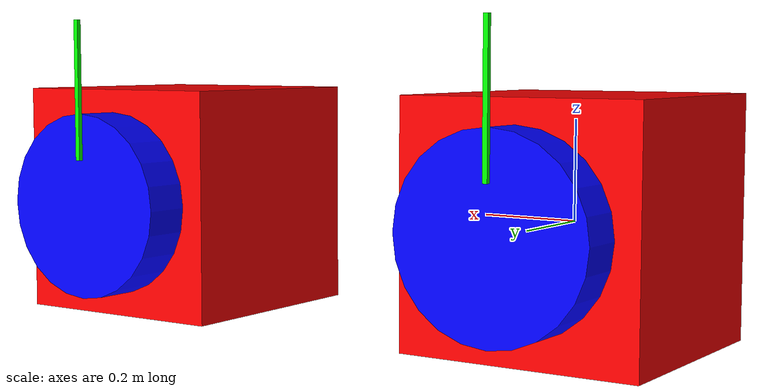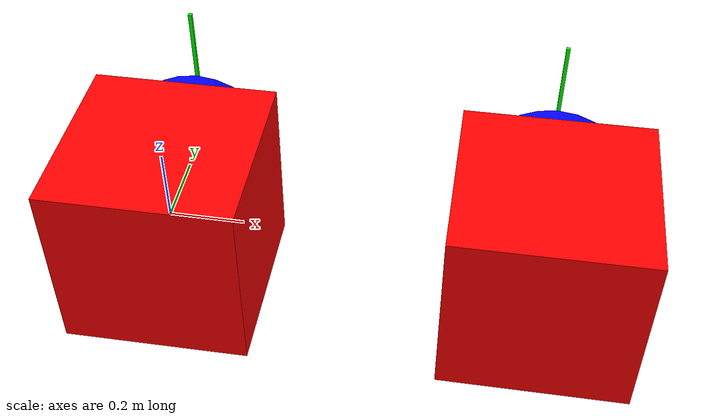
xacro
<?xml version="1.0"?>
<robot xmlns:xacro="http://www.ros.org/wiki/xacro" name="test_double_moteus">

  <link name="world">
    </link>

    <link name="box">
        <visual>
            <origin xyz="0.0 0.0 0.0" rpy="0.0 0.0 0.0"/>
            <geometry>
                <box size="0.5 0.5 0.5"/>
            </geometry>
            <material name="red">
                <color rgba="1.0 0.0 0.0 1.0"/>
            </material>
        </visual>
    </link>

    <joint name="world_box_1" type="fixed">
        <origin xyz="0.0 0.0 0.0" rpy="0.0 0.0 0.0"/>
        <parent link="world"/>
        <child link="box"/>
    </joint>

    <link name="rotor">
        <visual>
            <origin xyz="0.0 0.0 0.0" rpy="0.0 0.0 0.0"/>
            <geometry>
                <cylinder radius="0.2" length="0.1"/>
            </geometry>
            <material name="red">
                <color rgba="0.0 0.0 1.0 1.0"/>
            </material>
        </visual>
    </link>

    <link name="indicator">
        <visual>
            <origin xyz="0.0 0.0 0.0" rpy="0.0 0.0 0.0"/>
            <geometry>
                <box size="0.01 0.3 0.01"/>
            </geometry>
            <material name="">
                <color rgba="0.0 1.0 0.0 1.0"/>
                <texture filename=""/>
            </material>
        </visual>
    </link>

    <joint name="joint_1" type="revolute">
        <origin xyz="0.0 0.3 0.0" rpy="-1.5707 0.0 0.0"/>
        <parent link="box"/>
        <child link="rotor"/>
        <axis xyz="0.0 0.0 -1.0"/>
        <limit lower="-10.0" upper="10.0" effort="10.0" velocity="100.0"/>
    </joint>

    <joint name="indicator_joint" type="fixed">
        <origin xyz="0.0 -0.25 0.055" rpy="0.0 0.0 0.0"/>
        <parent link="rotor"/>
        <child link="indicator"/>
    </joint>

    <link name="box_2">
        <visual>
            <origin xyz="0.0 0.0 0.0" rpy="0.0 0.0 0.0"/>
            <geometry>
                <box size="0.5 0.5 0.5"/>
            </geometry>
            <material name="red">
                <color rgba="1.0 0.0 0.0 1.0"/>
            </material>
        </visual>
    </link>

    <joint name="world_box_2" type="fixed">
        <origin xyz="1.0 0.0 0.0" rpy="0.0 0.0 0.0"/>
        <parent link="world"/>
        <child link="box_2"/>
    </joint>

    <link name="rotor_2">
        <visual>
            <origin xyz="0.0 0.0 0.0" rpy="0.0 0.0 0.0"/>
            <geometry>
                <cylinder radius="0.2" length="0.1"/>
            </geometry>
            <material name="red">
                <color rgba="0.0 0.0 1.0 1.0"/>
            </material>
        </visual>
    </link>

    <link name="indicator_2">
        <visual>
            <origin xyz="0.0 0.0 0.0" rpy="0.0 0.0 0.0"/>
            <geometry>
                <box size="0.01 0.3 0.01"/>
            </geometry>
            <material name="">
                <color rgba="0.0 1.0 0.0 1.0"/>
                <texture filename=""/>
            </material>
        </visual>
    </link>

    <joint name="joint_2" type="revolute">
        <origin xyz="0.0 0.3 0.0" rpy="-1.5707 0.0 0.0"/>
        <parent link="box_2"/>
        <child link="rotor_2"/>
        <axis xyz="0.0 0.0 -1.0"/>
        <limit lower="-10.0" upper="10.0" effort="10.0" velocity="100.0"/>
    </joint>

    <joint name="indicator_joint_2" type="fixed">
        <origin xyz="0.0 -0.25 0.055" rpy="0.0 0.0 0.0"/>
        <parent link="rotor_2"/>
        <child link="indicator_2"/>
    </joint>

  <ros2_control name="pi3hat_hardware_interface" type="system">
    <hardware>
          <plugin>pi3hat_hardware_interface/Pi3HatHardwareInterface</plugin>
            <param name="update_rate">500</param>
            <param name="wait_for_attitude">false</param>
            <param name="imu_mounting_deg.yaw">0</param>
            <param name="imu_mounting_deg.pitch">0</param>
            <param name="imu_mounting_deg.roll">0</param>
            <param name="imu_sampling_rate">1000</param>

            <param name="can_1_fdcan_frame">true</param>
            <param name="can_1_automatic_retransmission">true</param>
            <param name="can_1_bitrate_switch">true</param>

            <param name="can_2_fdcan_frame">true</param>
            <param name="can_2_automatic_retransmission">true</param>
            <param name="can_2_bitrate_switch">true</param>

            <param name="can_3_fdcan_frame">true</param>
            <param name="can_3_automatic_retransmission">true</param>
            <param name="can_3_bitrate_switch">true</param>

            <param name="can_4_fdcan_frame">true</param>
            <param name="can_4_automatic_retransmission">true</param>
            <param name="can_4_bitrate_switch">true</param>

            <param name="can_5_fdcan_frame">true</param>
            <param name="can_5_automatic_retransmission">true</param>
            <param name="can_5_bitrate_switch">true</param>
      </hardware>

      <joint name="joint_1">
          <param name="controller_type">moteus</param>
          <param name="controller_can_bus">1</param>
          <param name="controller_can_id">1</param>

          <param name="motor_direction">1</param>
          <param name="motor_position_offset">0.0</param>
          <param name="motor_position_max">500.0</param>
          <param name="motor_position_min">-500.0</param>
          <param name="motor_velocity_max">10.0</param>
          <param name="motor_torque_max">1.0</param>

          <command_interface name="position"/>
          <command_interface name="velocity"/>
          <command_interface name="effort"/>

          <state_interface name = "position"/>
          <state_interface name = "velocity"/>
          <state_interface name = "effort"/>
          <state_interface name = "temperature"/>
          <state_interface name="fault"/>
          <state_interface name="motor_effort"/>
      </joint>

      <joint name="joint_2">
          <param name="controller_type">moteus</param>
          <param name="controller_can_bus">2</param>
          <param name="controller_can_id">2</param>

          <param name="motor_direction">1</param>
          <param name="motor_position_offset">0.0</param>
          <param name="motor_position_max">500.0</param>
          <param name="motor_position_min">-500.0</param>
          <param name="motor_velocity_max">10.0</param>
          <param name="motor_torque_max">1</param>

          <command_interface name="position"/>
          <command_interface name="velocity"/>
          <command_interface name="effort"/>

          <state_interface name = "position"/>
          <state_interface name = "velocity"/>
          <state_interface name = "effort"/>
          <state_interface name = "temperature"/>
          <state_interface name="fault"/>
          <state_interface name="motor_effort"/>
      </joint>
      <transmission name="fbl_transmission">
          <plugin>transmission_interface/FourBarLinkageTransmission</plugin>
          <actuator name="joint_1_motor" role="actuator1">
            <mechanical_reduction>16.0</mechanical_reduction>
          </actuator>
          <actuator name="joint_2_motor" role="actuator2">
            <mechanical_reduction>16.0</mechanical_reduction>
          </actuator>
          <joint name="joint_1" role="joint1">
            <offset>0.0</offset>
            <mechanical_reduction>1.0</mechanical_reduction>
          </joint>
          <joint name="joint_2" role="joint2">
            <offset>0.0</offset>
            <mechanical_reduction>1.0</mechanical_reduction>
          </joint>
        </transmission>

      <sensor name="imu_sensor">
          <state_interface name = "orientation.x"/>
          <state_interface name = "orientation.y"/>
          <state_interface name = "orientation.z"/>
          <state_interface name = "orientation.w"/>
          <state_interface name = "angular_velocity.x"/>
          <state_interface name = "angular_velocity.y"/>
          <state_interface name = "angular_velocity.z"/>
          <state_interface name = "linear_acceleration.x"/>
          <state_interface name = "linear_acceleration.y"/>
          <state_interface name = "linear_acceleration.z"/>
      </sensor>
  </ros2_control>

</robot>
